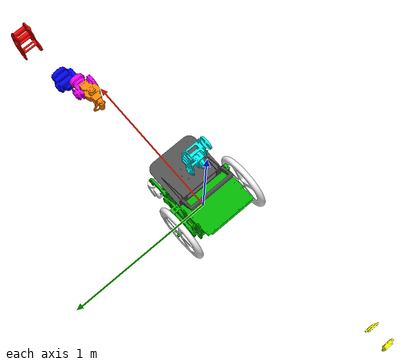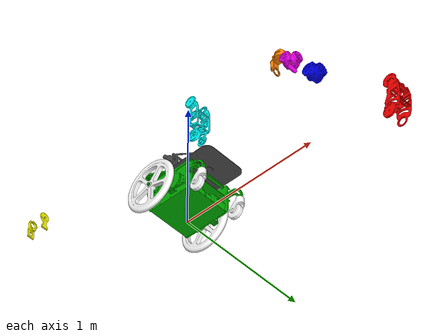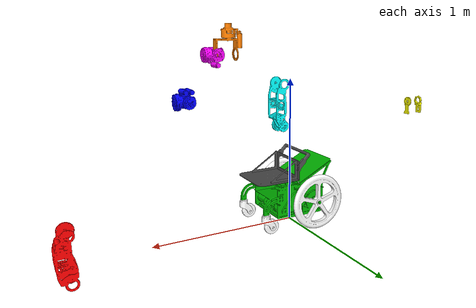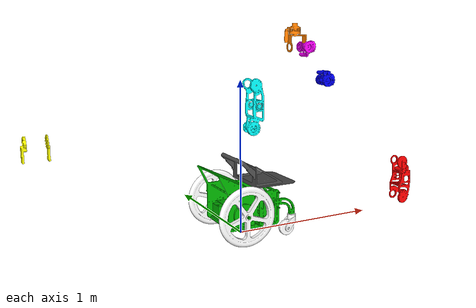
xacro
<?xml version="1.0"?>

<robot name="6dof_huboq" xmlns:xacro="http://ros.org/wiki/xacro">

  <!-- Include materials -->

    <material name="Black">
        <color rgba="0.0 0.0 0.0 1.0"/>
    </material>

    <material name="Red">
        <color rgba="0.8 0.0 0.0 1.0"/>
    </material>

    <material name="White">
        <color rgba="1.0 1.0 1.0 1.0"/>
    </material>

  <xacro:property name="deg_to_rad" value="0.01745329251994329577"/>

  <!-- Folder Setting -->
  <!-- small stl:huboq_mani_stl-small, original stl:huboq_mani_stl -->
  <xacro:property name="stl_folder" value="huboq_mani_stl-small"/>

  <!-- Constants -->
  <xacro:property name="M_SCALE" value="0.001 0.001 0.001"/>
  <xacro:property name="M_PI" value="3.14159"/>

  <!-- Link Properties -->
  <xacro:property name="mp_body_length" value="0.4" />
  <xacro:property name="mp_body_width" value="0.4" />
  <xacro:property name="mp_body_height" value="0.3" />

  <xacro:property name="mp_wheel_length" value="0.04" />
  <xacro:property name="mp_wheel_radius" value="0.19" />

  <xacro:property name="mani_offset_x" value="0"/>
  <xacro:property name="mani_offset_y" value="0."/>
  <xacro:property name="mani_offset_z" value="0"/>

  <xacro:property name="base_link_length" value="0.14" />
  <xacro:property name="base_link_width" value="0.07" />
  <xacro:property name="base_link_height" value="0.1" />

	<xacro:property name="HR_link_length" value="0.13" />
	<xacro:property name="HR_link_radius" value="0.06" />

	<xacro:property name="HP_link_length" value="0.1" />
	<xacro:property name="HP_link_width" value="0.11" />
  <xacro:property name="HP_link_height" value="0.28" />

	<xacro:property name="Knee_link_length" value="0.1" />
	<xacro:property name="Knee_link_width" value="0.11" />
  <xacro:property name="Knee_link_height" value="0.28" />

  <xacro:property name="AP_link_length" value="0.12" />
	<xacro:property name="AP_link_radius" value="0.06" />

	<xacro:property name="AR_link_length" value="0.15" />
	<xacro:property name="AR_link_width" value="0.10" />
  <xacro:property name="AR_link_height" value="0.175" />

  <xacro:property name="AY_link_length" value="0.4" />
	<xacro:property name="AY_link_width" value="0.35" />
  <xacro:property name="AY_link_height" value="0.18" />

  <!-- Inertia Properties -->
	<xacro:macro name="inertial_matrix" params="mass">
               <inertial>
                       <mass value="${mass}" />
                       <inertia ixx="0.5" ixy="0.0" ixz="0.0"
                                iyy="0.5" iyz="0.0"
                                izz="0.5" />
               </inertial>
	</xacro:macro>

   <xacro:macro name="transmission_block" params="joint_name">
	  <transmission name="tran1">
	    <type>transmission_interface/SimpleTransmission</type>
	    <joint name="${joint_name}">
	      <hardwareInterface>hardware_interface/PositionJointInterface</hardwareInterface>
	    </joint>
	    <actuator name="motor1">
	      <hardwareInterface>hardware_interface/PositionJointInterface</hardwareInterface>
	      <mechanicalReduction>1</mechanicalReduction>
	    </actuator>
	  </transmission>
   </xacro:macro>

  <!-- BASE-FOOTPRINT -->
  <!-- base_footprint is a fictitious link(frame) that is on the ground right below base_link origin -->
  <link name="base_footprint">
    <inertial>
      <mass value="0.0001" />
      <origin xyz="0 0 0" />
      <inertia ixx="0.0001" ixy="0.0" ixz="0.0"
          iyy="0.0001" iyz="0.0"
          izz="0.0001" />
    </inertial>
    <visual>
        <origin xyz="0 0 0" rpy="0 0 0" />
        <geometry>
            <box size="0.001 0.001 0.001" />
        </geometry>
    </visual>
  </link>

  <gazebo reference="base_footprint">
    <turnGravityOff>false</turnGravityOff>
  </gazebo>

  <joint name="base_footprint_joint" type="fixed">
    <origin xyz="0 0 0" rpy="0 0 0" />
    <parent link="base_footprint"/>
    <child link="mp_body" />
  </joint>

 <link name="mp_body">
    <visual>
      <geometry>
        <mesh filename="package://huboq_urdf_pkg/mesh/huboq_mp_stl-small/MP_Body.stl" scale="0.001 0.001 0.001"/>
      </geometry>
        <origin rpy="0 0 0" xyz="1.5 0.1155 0"/>
      <material name="green">
        <color rgba="0 0.7 0 1"/>
      </material>
    </visual>

    <collision>
      <geometry>
	      <box size="${mp_body_length} ${mp_body_width} ${mp_body_height}"/>
      </geometry>
      <origin rpy="0 0 0" xyz="0 0 0.2"/>
    </collision>

	  <xacro:inertial_matrix mass="1"/>
  </link>

  <gazebo reference="mp_body">
    <turnGravityOff>false</turnGravityOff>
  </gazebo>

  <link name="mp_left_caster">
    <visual>
      <geometry>
        <mesh filename="package://huboq_urdf_pkg/mesh/huboq_mp_stl-small/Caster_Blickle_Bracket_New.stl" scale="0.001 0.001 0.001"/>
      </geometry>
        <origin rpy="0 0 ${180*deg_to_rad}" xyz="0 0 0"/>
      <material name="white">
        <color rgba="1 1 1 1"/>
      </material>
    </visual>

    <collision>
      <geometry>
	      <cylinder length="0.04" radius="0.03"/>
      </geometry>
      <origin rpy="0 0 0" xyz="0 0 0"/>
    </collision>

	  <xacro:inertial_matrix mass="1"/>
  </link>

  <joint name="mp_left_caster_joint" type="continuous">
    <parent link="mp_body"/>
    <child link="mp_left_caster"/>
    <origin xyz="0.282 -0.17 0.135"/>
    <axis xyz="0 0 1" />
  </joint>

  <link name="mp_left_caster_wheel">
    <visual>
      <geometry>
        <mesh filename="package://huboq_urdf_pkg/mesh/huboq_mp_stl-small/Caster_Blickle_wheel.stl" scale="0.001 0.001 0.001"/>
      </geometry>
        <origin rpy="${90*deg_to_rad} 0 0" xyz="0 0 0"/>
      <material name="white">
        <color rgba="1 1 1 1"/>
      </material>
    </visual>

    <collision>
      <geometry>
	      <cylinder length="0.03" radius="0.05"/>
      </geometry>
      <origin rpy="${90*deg_to_rad} 0 0" xyz="0 -0.0155 0"/>
    </collision>

	  <xacro:inertial_matrix mass="1"/>
  </link>

  <joint name="mp_left_caster_wheel_joint" type="continuous">
    <parent link="mp_left_caster"/>
    <child link="mp_left_caster_wheel"/>
    <origin xyz="-0.038 0.0165 -0.085"/>
    <axis xyz="0 1 0" />
  </joint>

  <link name="mp_right_caster">
    <visual>
      <geometry>
        <mesh filename="package://huboq_urdf_pkg/mesh/huboq_mp_stl-small/Caster_Blickle_Bracket_New.stl" scale="0.001 0.001 0.001"/>
      </geometry>
        <origin rpy="0 0 ${180*deg_to_rad}" xyz="0 0 0"/>
      <material name="white">
        <color rgba="1 1 1 1"/>
      </material>
    </visual>

    <collision>
      <geometry>
	      <cylinder length="0.04" radius="0.03"/>
      </geometry>
      <origin rpy="0 0 0" xyz="0 0 0"/>
    </collision>

	  <xacro:inertial_matrix mass="1"/>
  </link>

  <joint name="mp_right_caster_joint" type="continuous">
    <parent link="mp_body"/>
    <child link="mp_right_caster"/>
    <origin xyz="0.282 0.17 0.135"/>
    <axis xyz="0 0 1" />
  </joint>

 <link name="mp_right_caster_wheel">
    <visual>
      <geometry>
        <mesh filename="package://huboq_urdf_pkg/mesh/huboq_mp_stl-small/Caster_Blickle_wheel.stl" scale="0.001 0.001 0.001"/>
      </geometry>
        <origin rpy="${90*deg_to_rad} 0 0" xyz="0 0 0"/>
      <material name="white">
        <color rgba="1 1 1 1"/>
      </material>
    </visual>

    <collision>
      <geometry>
	      <cylinder length="0.03" radius="0.05"/>
      </geometry>
      <origin rpy="${90*deg_to_rad} 0 0" xyz="0 -0.0155 0"/>
    </collision>

	  <xacro:inertial_matrix mass="1"/>
  </link>

  <joint name="mp_right_caster_wheel_joint" type="continuous">
    <parent link="mp_right_caster"/>
    <child link="mp_right_caster_wheel"/>
    <origin xyz="-0.038 0.0165 -0.085"/>
    <axis xyz="0 1 0" />
  </joint>

  <link name="mp_left_wheel">
    <visual>
      <geometry>
        <mesh filename="package://huboq_urdf_pkg/mesh/huboq_mp_stl-small/Wheel_Strida_16inch_Assy.stl" scale="0.001 0.001 0.001"/>
      </geometry>
        <origin rpy="${90.*M_PI/180.} 0 0" xyz="0.03 0 0"/>
      <material name="white">
        <color rgba="1 1 1 1"/>
      </material>
    </visual>

    <collision>
      <geometry>
	      <cylinder length="${mp_wheel_length}" radius="${mp_wheel_radius}"/>
      </geometry>
      <origin rpy="${90.*M_PI/180.} 0 0" xyz="0 0.01 0"/>
    </collision>

	  <xacro:inertial_matrix mass="1"/>
  </link>

  <joint name="mp_left_wheel_joint" type="continuous">
    <parent link="mp_body"/>
    <child link="mp_left_wheel"/>
    <origin xyz="-0.078 0.232 0.19"/>
    <axis xyz="0 1 0" />
  </joint>

  <link name="mp_right_wheel">
    <visual>
      <geometry>
        <mesh filename="package://huboq_urdf_pkg/mesh/huboq_mp_stl-small/Wheel_Strida_16inch_Assy.stl" scale="0.001 0.001 0.001"/>
      </geometry>
        <origin rpy="${-90.*M_PI/180.} 0 0" xyz="0.03 0 0"/>
      <material name="white">
        <color rgba="1 1 1 1"/>
      </material>
    </visual>

    <collision>
      <geometry>
	      <cylinder length="${mp_wheel_length}" radius="${mp_wheel_radius}"/>
      </geometry>
      <origin rpy="${-90.*M_PI/180.} 0 0" xyz="0 -0.01 0"/>
    </collision>

	  <xacro:inertial_matrix mass="1"/>
  </link>

  <joint name="mp_right_wheel_joint" type="continuous">
    <parent link="mp_body"/>
    <child link="mp_right_wheel"/>
    <origin xyz="-0.078 -0.232 0.19"/>
    <axis xyz="0 1 0" />
  </joint>

<!-- MANI -->
  <joint name="mp_mani_joint" type="fixed">
    <parent link="mp_body"/>
    <child link="base_link"/>
    <origin xyz="0 0 0"/>
  </joint>

  <link name="base_link">
    <visual>
      <geometry>
	      <mesh filename="package://huboq_urdf_pkg/mesh/${stl_folder}/base_link.stl" scale="0.001 0.001 0.001"/>
      </geometry>
      <origin rpy="0 0 0" xyz="0.157 0 ${base_link_height/2+0.28}"/>
      <material name="yellow">
        <color rgba="1 1 0 1"/>
      </material>
    </visual>

    <collision>
      <geometry>
	    <box size="${base_link_length} ${base_link_width} ${base_link_height}"/>
      </geometry>
      <origin rpy="0 0 0" xyz="0.09 0 ${base_link_height/2+0.31}"/>
    </collision>

	  <xacro:inertial_matrix mass="1"/>
  </link>

  <joint name="HR_joint" type="revolute">
    <parent link="base_link"/>
    <child link="HR_link"/>
    <origin xyz="${0.078} 0 ${0.41}"/>
    <axis xyz="1 0 0" />
    <limit effort="300" velocity="0.1" lower="${-40*deg_to_rad}" upper="${40*deg_to_rad}"/>
    <dynamics damping="50" friction="1"/>
  </joint>

  <link name="HR_link">
    <visual>
      <geometry>
        <mesh filename="package://huboq_urdf_pkg/mesh/${stl_folder}/hip_roll_link.stl" scale="0.001 0.001 0.001"/>
      </geometry>
        <origin rpy="0 0 0" xyz="${0.707} 0.278 ${0.536}"/>
      <material name="blue">
        <color rgba="0 0 1 1"/>
      </material>
    </visual>
    <collision>
      <geometry>
	      <cylinder length="${HR_link_length}" radius="${HR_link_radius}"/>
      </geometry>
      <origin rpy="0 ${90.*M_PI/180.} 0" xyz="0 0 0"/>
    </collision>
	  <xacro:inertial_matrix mass="1"/>
  </link>

  <joint name="HP_joint" type="revolute">
    <parent link="HR_link"/>
    <child link="HP_link"/>
    <origin xyz="0 0 0"/>
    <axis xyz="0 1 0" />
    <limit effort="300" velocity="0.1" lower="${-80*deg_to_rad}" upper="${80*deg_to_rad}"/>
    <dynamics damping="50" friction="1"/>
  </joint>

  <link name="HP_link">
    <visual>
      <geometry>
        <mesh filename="package://huboq_urdf_pkg/mesh/${stl_folder}/hip_pitch_link.stl" scale="0.001 0.001 0.001"/>
      </geometry>
        <origin rpy="0 0 0" xyz="${1.4214} 0.115 ${-0.4095}"/>
      <material name="red">
        <color rgba="1 0 0 1"/>
      </material>
    </visual>
    <collision>
      <geometry>
	      <box size="${HP_link_length} ${HP_link_width} ${HP_link_height}"/>
      </geometry>
      <origin rpy="0 0 0" xyz="0 0 ${HP_link_height/2}"/>
    </collision>
  	<xacro:inertial_matrix mass="1"/>
  </link>

  <joint name="Knee_joint" type="revolute">
    <parent link="HP_link"/>
    <child link="Knee_link"/>
    <origin xyz="0 0 ${HP_link_height}"/>
    <axis xyz="0 1 0" />
    <limit effort="300" velocity="0.1" lower="${-160*deg_to_rad}" upper="${80*deg_to_rad}"/>
    <dynamics damping="50" friction="1"/>
  </joint>

  <link name="Knee_link">
    <visual>
      <geometry>
        <mesh filename="package://huboq_urdf_pkg/mesh/${stl_folder}/knee_link.stl" scale="0.001 0.001 0.001"/>
      </geometry>
        <origin rpy="0 0 0" xyz="${0.0008} 0.0583 ${0.0005}"/>
      <material name="cyon">
        <color rgba="0 1 1 1"/>
      </material>
    </visual>
    <collision>
      <geometry>
	      <box size="${Knee_link_length} ${Knee_link_width} ${Knee_link_height}"/>
      </geometry>
      <origin rpy="0 0 0" xyz="0 0 ${Knee_link_height/2}"/>
    </collision>
  	<xacro:inertial_matrix mass="1"/>
  </link>

  <joint name="AP_joint" type="revolute">
    <parent link="Knee_link"/>
    <child link="AP_link"/>
    <origin xyz="0 0 ${Knee_link_height}"/>
    <axis xyz="0 1 0" />
    <limit effort="300" velocity="0.1" lower="${-90*deg_to_rad}" upper="${90*deg_to_rad}"/>
    <dynamics damping="50" friction="1"/>
  </joint>

  <link name="AP_link">
    <visual>
      <geometry>
        <mesh filename="package://huboq_urdf_pkg/mesh/${stl_folder}/ankle_pitch_link.stl" scale="0.001 0.001 0.001"/>
      </geometry>
        <origin rpy="0 0 0" xyz="${0.5709} 0.2673 ${0.222}"/>
      <material name="Magenta">
        <color rgba="1 0 1 1"/>
      </material>
    </visual>
    <collision>
      <geometry>
	      <cylinder length="${AP_link_length}" radius="${AP_link_radius}"/>
      </geometry>
      <origin rpy="${90.*M_PI/180.} 0 0" xyz="0 0 0"/>
    </collision>
	  <xacro:inertial_matrix mass="1"/>
  </link>

  <joint name="AR_joint" type="revolute">
    <parent link="AP_link"/>
    <child link="AR_link"/>
    <origin xyz="0 0 0"/>
    <axis xyz="1 0 0" />
    <limit effort="300" velocity="0.1" lower="${-80*deg_to_rad}" upper="${80*deg_to_rad}"/>
    <dynamics damping="50" friction="1"/>
  </joint>

  <link name="AR_link">
    <visual>
      <geometry>
        <mesh filename="package://huboq_urdf_pkg/mesh/${stl_folder}/ankle_roll_link.stl" scale="0.001 0.001 0.001"/>
      </geometry>
        <origin rpy="0 0 0" xyz="${0.571} 0.2672 ${0.222}"/>
      <material name="orange">
        <color rgba="1 0.5 0 1"/>
      </material>
    </visual>
    <collision>
      <geometry>
	      <box size="${AR_link_length} ${AR_link_width} ${AR_link_height}"/>
      </geometry>
      <origin rpy="0 0 0" xyz="0 0 ${AR_link_height/2}"/>
    </collision>
  	<xacro:inertial_matrix mass="1"/>
  </link>

  <joint name="AY_joint" type="revolute">
    <parent link="AR_link"/>
    <child link="AY_link"/>
    <origin xyz="0 0 ${AR_link_height}"/>
    <axis xyz="0 0 1" />
    <limit effort="300" velocity="0.1" lower="-3.14" upper="3.14"/>
    <dynamics damping="50" friction="1"/>
  </joint>

  <link name="AY_link">
    <visual>
      <geometry>
        <mesh filename="package://huboq_urdf_pkg/mesh/${stl_folder}/ankle_yaw_link.stl" scale="0.001 0.001 0.001"/>
      </geometry>
        <origin rpy="0 0 0" xyz="${0.076} 0 ${-0.816}"/>
      <material name="Gray">
        <color rgba="0.3 0.3 0.3 1"/>
      </material>
    </visual>
    <collision>
      <geometry>
	      <box size="${AY_link_length} ${AY_link_width} ${AY_link_height}"/>
      </geometry>
      <origin rpy="0 0 0" xyz="-0.028 0 ${AY_link_height/2}"/>
    </collision>
	  <xacro:inertial_matrix mass="1"/>
  </link>

  <!-- Transmissions for ROS Control -->

   <xacro:transmission_block joint_name="HR_joint"/>
   <xacro:transmission_block joint_name="HP_joint"/>
   <xacro:transmission_block joint_name="Knee_joint"/>
   <xacro:transmission_block joint_name="AP_joint"/>
   <xacro:transmission_block joint_name="AR_joint"/>
   <xacro:transmission_block joint_name="AY_joint"/>

 <!-- ros_control plugin -->
  <gazebo>
    <plugin name="gazebo_ros_control" filename="libgazebo_ros_control.so">
      <robotNamespace>/6dof_huboq</robotNamespace>
    </plugin>
  </gazebo>

</robot>
